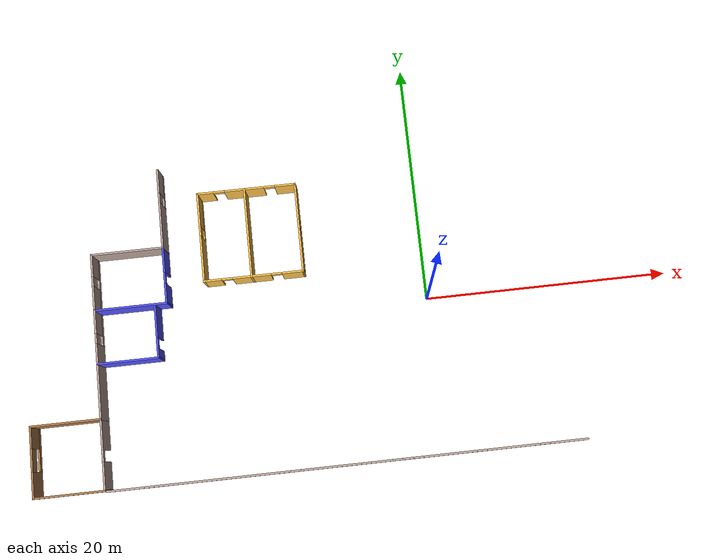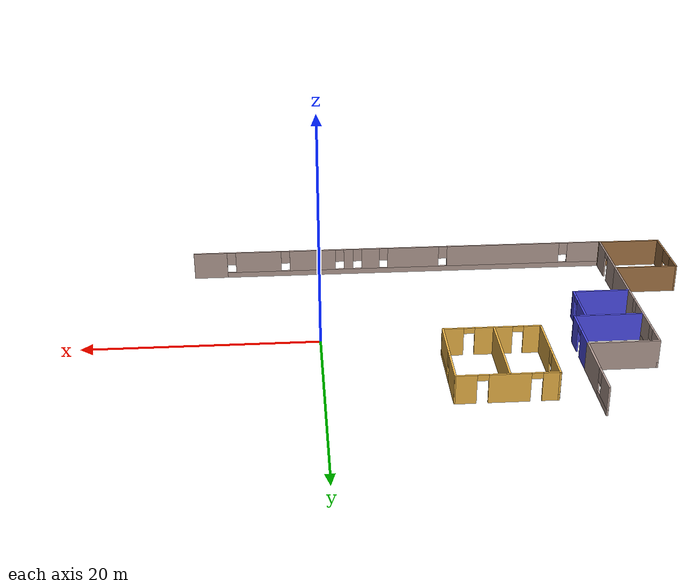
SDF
<sdf version="1.6">
 <model name="Building">
  <pose>-10.6691 -0.029366 0 0 -0 0</pose>
  <link name="Wall_161">
   <pose>2.8856 -12.8282 0 0 -0 3.14159</pose>
   <visual name="Wall_161_Visual_0">
    <pose>-17.595 0 1.25 0 -0 0</pose>
    <geometry><box><size>3.06004 0.15 2.5</size></box></geometry>
    <material>
     <script><uri>file://media/materials/scripts/gazebo.material</uri><name>Gazebo/Grey</name></script>
     <ambient>0.760784 0.662745 0.627451 1</ambient>
    </material>
    <meta><layer>0</layer></meta>
   </visual>
   <collision name="Wall_161_Collision_0">
    <geometry><box><size>3.06004 0.15 2.5</size></box></geometry>
    <pose>-17.595 0 1.25 0 -0 0</pose>
   </collision>
   <visual name="Wall_161_Visual_1">
    <pose>1.53002 0 0.25 0 -0 0</pose>
    <geometry><box><size>35.19 0.15 0.5</size></box></geometry>
    <material>
     <script><uri>file://media/materials/scripts/gazebo.material</uri><name>Gazebo/Grey</name></script>
     <ambient>0.760784 0.662745 0.627451 1</ambient>
    </material>
    <meta><layer>0</layer></meta>
   </visual>
   <collision name="Wall_161_Collision_1">
    <geometry><box><size>35.19 0.15 0.5</size></box></geometry>
    <pose>1.53002 0 0.25 0 -0 0</pose>
   </collision>
   <visual name="Wall_161_Visual_2">
    <pose>-13.1526 0 1.5 0 -0 0</pose>
    <geometry><box><size>4.22475 0.15 2</size></box></geometry>
    <material>
     <script><uri>file://media/materials/scripts/gazebo.material</uri><name>Gazebo/Grey</name></script>
     <ambient>0.760784 0.662745 0.627451 1</ambient>
    </material>
    <meta><layer>0</layer></meta>
   </visual>
   <collision name="Wall_161_Collision_2">
    <geometry><box><size>4.22475 0.15 2</size></box></geometry>
    <pose>-13.1526 0 1.5 0 -0 0</pose>
   </collision>
   <visual name="Wall_161_Visual_3">
    <pose>-8.105 0 1.5 0 -0 0</pose>
    <geometry><box><size>4.27041 0.15 2</size></box></geometry>
    <material>
     <script><uri>file://media/materials/scripts/gazebo.material</uri><name>Gazebo/Grey</name></script>
     <ambient>0.760784 0.662745 0.627451 1</ambient>
    </material>
    <meta><layer>0</layer></meta>
   </visual>
   <collision name="Wall_161_Collision_3">
    <geometry><box><size>4.27041 0.15 2</size></box></geometry>
    <pose>-8.105 0 1.5 0 -0 0</pose>
   </collision>
   <visual name="Wall_161_Visual_4">
    <pose>-4.73361 0 1.5 0 -0 0</pose>
    <geometry><box><size>0.872362 0.15 2</size></box></geometry>
    <material>
     <script><uri>file://media/materials/scripts/gazebo.material</uri><name>Gazebo/Grey</name></script>
     <ambient>0.760784 0.662745 0.627451 1</ambient>
    </material>
    <meta><layer>0</layer></meta>
   </visual>
   <collision name="Wall_161_Collision_4">
    <geometry><box><size>0.872362 0.15 2</size></box></geometry>
    <pose>-4.73361 0 1.5 0 -0 0</pose>
   </collision>
   <visual name="Wall_161_Visual_5">
    <pose>-2.66754 0 1.5 0 -0 0</pose>
    <geometry><box><size>1.65978 0.15 2</size></box></geometry>
    <material>
     <script><uri>file://media/materials/scripts/gazebo.material</uri><name>Gazebo/Grey</name></script>
     <ambient>0.760784 0.662745 0.627451 1</ambient>
    </material>
    <meta><layer>0</layer></meta>
   </visual>
   <collision name="Wall_161_Collision_5">
    <geometry><box><size>1.65978 0.15 2</size></box></geometry>
    <pose>-2.66754 0 1.5 0 -0 0</pose>
   </collision>
   <visual name="Wall_161_Visual_6">
    <pose>1.37416 0 1.5 0 -0 0</pose>
    <geometry><box><size>4.82362 0.15 2</size></box></geometry>
    <material>
     <script><uri>file://media/materials/scripts/gazebo.material</uri><name>Gazebo/Grey</name></script>
     <ambient>0.760784 0.662745 0.627451 1</ambient>
    </material>
    <meta><layer>0</layer></meta>
   </visual>
   <collision name="Wall_161_Collision_6">
    <geometry><box><size>4.82362 0.15 2</size></box></geometry>
    <pose>1.37416 0 1.5 0 -0 0</pose>
   </collision>
   <visual name="Wall_161_Visual_7">
    <pose>9.94407 0 1.5 0 -0 0</pose>
    <geometry><box><size>10.7162 0.15 2</size></box></geometry>
    <material>
     <script><uri>file://media/materials/scripts/gazebo.material</uri><name>Gazebo/Grey</name></script>
     <ambient>0.760784 0.662745 0.627451 1</ambient>
    </material>
    <meta><layer>0</layer></meta>
   </visual>
   <collision name="Wall_161_Collision_7">
    <geometry><box><size>10.7162 0.15 2</size></box></geometry>
    <pose>9.94407 0 1.5 0 -0 0</pose>
   </collision>
   <visual name="Wall_161_Visual_8">
    <pose>17.6136 0 1.5 0 -0 0</pose>
    <geometry><box><size>3.02283 0.15 2</size></box></geometry>
    <material>
     <script><uri>file://media/materials/scripts/gazebo.material</uri><name>Gazebo/Grey</name></script>
     <ambient>0.760784 0.662745 0.627451 1</ambient>
    </material>
    <meta><layer>0</layer></meta>
   </visual>
   <collision name="Wall_161_Collision_8">
    <geometry><box><size>3.02283 0.15 2</size></box></geometry>
    <pose>17.6136 0 1.5 0 -0 0</pose>
   </collision>
   <visual name="Wall_161_Visual_9">
    <pose>-15.665 0 1.9 0 -0 0</pose>
    <geometry><box><size>0.8 0.15 1.2</size></box></geometry>
    <material>
     <script><uri>file://media/materials/scripts/gazebo.material</uri><name>Gazebo/Grey</name></script>
     <ambient>0.760784 0.662745 0.627451 1</ambient>
    </material>
    <meta><layer>0</layer></meta>
   </visual>
   <collision name="Wall_161_Collision_9">
    <geometry><box><size>0.8 0.15 1.2</size></box></geometry>
    <pose>-15.665 0 1.9 0 -0 0</pose>
   </collision>
   <visual name="Wall_161_Visual_10">
    <pose>-10.6402 0 1.9 0 -0 0</pose>
    <geometry><box><size>0.8 0.15 1.2</size></box></geometry>
    <material>
     <script><uri>file://media/materials/scripts/gazebo.material</uri><name>Gazebo/Grey</name></script>
     <ambient>0.760784 0.662745 0.627451 1</ambient>
    </material>
    <meta><layer>0</layer></meta>
   </visual>
   <collision name="Wall_161_Collision_10">
    <geometry><box><size>0.8 0.15 1.2</size></box></geometry>
    <pose>-10.6402 0 1.9 0 -0 0</pose>
   </collision>
   <visual name="Wall_161_Visual_11">
    <pose>-5.56979 0 1.9 0 -0 0</pose>
    <geometry><box><size>0.8 0.15 1.2</size></box></geometry>
    <material>
     <script><uri>file://media/materials/scripts/gazebo.material</uri><name>Gazebo/Grey</name></script>
     <ambient>0.760784 0.662745 0.627451 1</ambient>
    </material>
    <meta><layer>0</layer></meta>
   </visual>
   <collision name="Wall_161_Collision_11">
    <geometry><box><size>0.8 0.15 1.2</size></box></geometry>
    <pose>-5.56979 0 1.9 0 -0 0</pose>
   </collision>
   <visual name="Wall_161_Visual_12">
    <pose>-3.89743 0 1.9 0 -0 0</pose>
    <geometry><box><size>0.8 0.15 1.2</size></box></geometry>
    <material>
     <script><uri>file://media/materials/scripts/gazebo.material</uri><name>Gazebo/Grey</name></script>
     <ambient>0.760784 0.662745 0.627451 1</ambient>
    </material>
    <meta><layer>0</layer></meta>
   </visual>
   <collision name="Wall_161_Collision_12">
    <geometry><box><size>0.8 0.15 1.2</size></box></geometry>
    <pose>-3.89743 0 1.9 0 -0 0</pose>
   </collision>
   <visual name="Wall_161_Visual_13">
    <pose>-1.43765 0 1.9 0 -0 0</pose>
    <geometry><box><size>0.8 0.15 1.2</size></box></geometry>
    <material>
     <script><uri>file://media/materials/scripts/gazebo.material</uri><name>Gazebo/Grey</name></script>
     <ambient>0.760784 0.662745 0.627451 1</ambient>
    </material>
    <meta><layer>0</layer></meta>
   </visual>
   <collision name="Wall_161_Collision_13">
    <geometry><box><size>0.8 0.15 1.2</size></box></geometry>
    <pose>-1.43765 0 1.9 0 -0 0</pose>
   </collision>
   <visual name="Wall_161_Visual_14">
    <pose>4.18597 0 1.9 0 -0 0</pose>
    <geometry><box><size>0.8 0.15 1.2</size></box></geometry>
    <material>
     <script><uri>file://media/materials/scripts/gazebo.material</uri><name>Gazebo/Grey</name></script>
     <ambient>0.760784 0.662745 0.627451 1</ambient>
    </material>
    <meta><layer>0</layer></meta>
   </visual>
   <collision name="Wall_161_Collision_14">
    <geometry><box><size>0.8 0.15 1.2</size></box></geometry>
    <pose>4.18597 0 1.9 0 -0 0</pose>
   </collision>
   <visual name="Wall_161_Visual_15">
    <pose>15.7022 0 1.9 0 -0 0</pose>
    <geometry><box><size>0.8 0.15 1.2</size></box></geometry>
    <material>
     <script><uri>file://media/materials/scripts/gazebo.material</uri><name>Gazebo/Grey</name></script>
     <ambient>0.760784 0.662745 0.627451 1</ambient>
    </material>
    <meta><layer>0</layer></meta>
   </visual>
   <collision name="Wall_161_Collision_15">
    <geometry><box><size>0.8 0.15 1.2</size></box></geometry>
    <pose>15.7022 0 1.9 0 -0 0</pose>
   </collision>
  </link>
  <link name="Wall_163">
   <collision name="Wall_163_Collision">
    <geometry><box><size>5.75 0.15 2.5</size></box></geometry>
    <pose>0 0 1.25 0 -0 0</pose>
   </collision>
   <visual name="Wall_163_Visual">
    <pose>0 0 1.25 0 -0 0</pose>
    <geometry><box><size>5.75 0.15 2.5</size></box></geometry>
    <material>
     <script><uri>file://media/materials/scripts/gazebo.material</uri><name>Gazebo/Wood</name></script>
     <ambient>0.760784 0.662745 0.627451 1</ambient>
    </material>
    <meta><layer>0</layer></meta>
   </visual>
   <pose>-19.1357 -7.15926 0 0 -0 0</pose>
  </link>
  <link name="Wall_164">
   <pose>-16.3357 -0.484261 0 0 -0 1.5708</pose>
   <visual name="Wall_164_Visual_0">
    <pose>-3.67658 0 1.25 0 -0 0</pose>
    <geometry><box><size>6.14683 0.15 2.5</size></box></geometry>
    <material>
     <script><uri>file://media/materials/scripts/gazebo.material</uri><name>Gazebo/Grey</name></script>
     <ambient>0.760784 0.662745 0.627451 1</ambient>
    </material>
    <meta><layer>0</layer></meta>
   </visual>
   <collision name="Wall_164_Collision_0">
    <geometry><box><size>6.14683 0.15 2.5</size></box></geometry>
    <pose>-3.67658 0 1.25 0 -0 0</pose>
   </collision>
   <visual name="Wall_164_Visual_1">
    <pose>3.07342 0 0.25 0 -0 0</pose>
    <geometry><box><size>7.35317 0.15 0.5</size></box></geometry>
    <material>
     <script><uri>file://media/materials/scripts/gazebo.material</uri><name>Gazebo/Grey</name></script>
     <ambient>0.760784 0.662745 0.627451 1</ambient>
    </material>
    <meta><layer>0</layer></meta>
   </visual>
   <collision name="Wall_164_Collision_1">
    <geometry><box><size>7.35317 0.15 0.5</size></box></geometry>
    <pose>3.07342 0 0.25 0 -0 0</pose>
   </collision>
   <visual name="Wall_164_Visual_2">
    <pose>2.14621 0 1.5 0 -0 0</pose>
    <geometry><box><size>3.89875 0.15 2</size></box></geometry>
    <material>
     <script><uri>file://media/materials/scripts/gazebo.material</uri><name>Gazebo/Grey</name></script>
     <ambient>0.760784 0.662745 0.627451 1</ambient>
    </material>
    <meta><layer>0</layer></meta>
   </visual>
   <collision name="Wall_164_Collision_2">
    <geometry><box><size>3.89875 0.15 2</size></box></geometry>
    <pose>2.14621 0 1.5 0 -0 0</pose>
   </collision>
   <visual name="Wall_164_Visual_3">
    <pose>5.82279 0 1.5 0 -0 0</pose>
    <geometry><box><size>1.85441 0.15 2</size></box></geometry>
    <material>
     <script><uri>file://media/materials/scripts/gazebo.material</uri><name>Gazebo/Grey</name></script>
     <ambient>0.760784 0.662745 0.627451 1</ambient>
    </material>
    <meta><layer>0</layer></meta>
   </visual>
   <collision name="Wall_164_Collision_3">
    <geometry><box><size>1.85441 0.15 2</size></box></geometry>
    <pose>5.82279 0 1.5 0 -0 0</pose>
   </collision>
   <visual name="Wall_164_Visual_4">
    <pose>-0.203166 0 1.9 0 -0 0</pose>
    <geometry><box><size>0.8 0.15 1.2</size></box></geometry>
    <material>
     <script><uri>file://media/materials/scripts/gazebo.material</uri><name>Gazebo/Grey</name></script>
     <ambient>0.760784 0.662745 0.627451 1</ambient>
    </material>
    <meta><layer>0</layer></meta>
   </visual>
   <collision name="Wall_164_Collision_4">
    <geometry><box><size>0.8 0.15 1.2</size></box></geometry>
    <pose>-0.203166 0 1.9 0 -0 0</pose>
   </collision>
   <visual name="Wall_164_Visual_5">
    <pose>4.49559 0 1.9 0 -0 0</pose>
    <geometry><box><size>0.8 0.15 1.2</size></box></geometry>
    <material>
     <script><uri>file://media/materials/scripts/gazebo.material</uri><name>Gazebo/Grey</name></script>
     <ambient>0.760784 0.662745 0.627451 1</ambient>
    </material>
    <meta><layer>0</layer></meta>
   </visual>
   <collision name="Wall_164_Collision_5">
    <geometry><box><size>0.8 0.15 1.2</size></box></geometry>
    <pose>4.49559 0 1.9 0 -0 0</pose>
   </collision>
  </link>
  <link name="Wall_165">
   <collision name="Wall_165_Collision">
    <geometry><box><size>6 0.15 2.5</size></box></geometry>
    <pose>0 0 1.25 0 -0 0</pose>
   </collision>
   <visual name="Wall_165_Visual">
    <pose>0 0 1.25 0 -0 0</pose>
    <geometry><box><size>6 0.15 2.5</size></box></geometry>
    <material>
     <script><uri>file://media/materials/scripts/gazebo.material</uri><name>Gazebo/Grey</name></script>
     <ambient>0.760784 0.662745 0.627451 1</ambient>
    </material>
    <meta><layer>0</layer></meta>
   </visual>
   <pose>-13.4107 6.19074 0 0 -0 0</pose>
  </link>
  <link name="Wall_166">
   <pose>-10.4857 9.49074 0 0 -0 1.5708</pose>
   <visual name="Wall_166_Visual_0">
    <pose>-1.42072 0 1.25 0 -0 0</pose>
    <geometry><box><size>3.90856 0.15 2.5</size></box></geometry>
    <material>
     <script><uri>file://media/materials/scripts/gazebo.material</uri><name>Gazebo/Grey</name></script>
     <ambient>0.760784 0.662745 0.627451 1</ambient>
    </material>
    <meta><layer>0</layer></meta>
   </visual>
   <collision name="Wall_166_Collision_0">
    <geometry><box><size>3.90856 0.15 2.5</size></box></geometry>
    <pose>-1.42072 0 1.25 0 -0 0</pose>
   </collision>
   <visual name="Wall_166_Visual_1">
    <pose>1.95428 0 0.25 0 -0 0</pose>
    <geometry><box><size>2.84144 0.15 0.5</size></box></geometry>
    <material>
     <script><uri>file://media/materials/scripts/gazebo.material</uri><name>Gazebo/Grey</name></script>
     <ambient>0.760784 0.662745 0.627451 1</ambient>
    </material>
    <meta><layer>0</layer></meta>
   </visual>
   <collision name="Wall_166_Collision_1">
    <geometry><box><size>2.84144 0.15 0.5</size></box></geometry>
    <pose>1.95428 0 0.25 0 -0 0</pose>
   </collision>
   <visual name="Wall_166_Visual_2">
    <pose>2.35428 0 1.5 0 -0 0</pose>
    <geometry><box><size>2.04144 0.15 2</size></box></geometry>
    <material>
     <script><uri>file://media/materials/scripts/gazebo.material</uri><name>Gazebo/Grey</name></script>
     <ambient>0.760784 0.662745 0.627451 1</ambient>
    </material>
    <meta><layer>0</layer></meta>
   </visual>
   <collision name="Wall_166_Collision_2">
    <geometry><box><size>2.04144 0.15 2</size></box></geometry>
    <pose>2.35428 0 1.5 0 -0 0</pose>
   </collision>
   <visual name="Wall_166_Visual_3">
    <pose>0.933557 0 1.9 0 -0 0</pose>
    <geometry><box><size>0.8 0.15 1.2</size></box></geometry>
    <material>
     <script><uri>file://media/materials/scripts/gazebo.material</uri><name>Gazebo/Grey</name></script>
     <ambient>0.760784 0.662745 0.627451 1</ambient>
    </material>
    <meta><layer>0</layer></meta>
   </visual>
   <collision name="Wall_166_Collision_3">
    <geometry><box><size>0.8 0.15 1.2</size></box></geometry>
    <pose>0.933557 0 1.9 0 -0 0</pose>
   </collision>
  </link>
  <link name="Wall_189">
   <pose>-16.3357 -9.95926 0 0 0 -1.5708</pose>
   <visual name="Wall_189_Visual_0">
    <pose>-1.62092 0 1.25 0 -0 0</pose>
    <geometry><box><size>2.50815 0.15 2.5</size></box></geometry>
    <material>
     <script><uri>file://media/materials/scripts/gazebo.material</uri><name>Gazebo/Grey</name></script>
     <ambient>0.760784 0.662745 0.627451 1</ambient>
    </material>
    <meta><layer>0</layer></meta>
   </visual>
   <collision name="Wall_189_Collision_0">
    <geometry><box><size>2.50815 0.15 2.5</size></box></geometry>
    <pose>-1.62092 0 1.25 0 -0 0</pose>
   </collision>
   <visual name="Wall_189_Visual_1">
    <pose>1.70408 0 1.25 0 -0 0</pose>
    <geometry><box><size>2.34185 0.15 2.5</size></box></geometry>
    <material>
     <script><uri>file://media/materials/scripts/gazebo.material</uri><name>Gazebo/Grey</name></script>
     <ambient>0.760784 0.662745 0.627451 1</ambient>
    </material>
    <meta><layer>0</layer></meta>
   </visual>
   <collision name="Wall_189_Collision_1">
    <geometry><box><size>2.34185 0.15 2.5</size></box></geometry>
    <pose>1.70408 0 1.25 0 -0 0</pose>
   </collision>
   <visual name="Wall_189_Visual_2">
    <pose>0.083151 0 2.25 0 -0 0</pose>
    <geometry><box><size>0.9 0.15 0.5</size></box></geometry>
    <material>
     <script><uri>file://media/materials/scripts/gazebo.material</uri><name>Gazebo/Grey</name></script>
     <ambient>0.760784 0.662745 0.627451 1</ambient>
    </material>
    <meta><layer>0</layer></meta>
   </visual>
   <collision name="Wall_189_Collision_2">
    <geometry><box><size>0.9 0.15 0.5</size></box></geometry>
    <pose>0.083151 0 2.25 0 -0 0</pose>
   </collision>
  </link>
  <link name="Wall_191">
   <pose>-10.4857 3.89074 0 0 0 -1.5708</pose>
   <visual name="Wall_191_Visual_0">
    <pose>-1.3027 0 1.25 0 -0 0</pose>
    <geometry><box><size>2.14459 0.15 2.5</size></box></geometry>
    <material>
     <script><uri>file://media/materials/scripts/gazebo.material</uri><name>Gazebo/Grey</name></script>
     <ambient>0.333333 0.333333 1 1</ambient>
    </material>
    <meta><layer>0</layer></meta>
   </visual>
   <collision name="Wall_191_Collision_0">
    <geometry><box><size>2.14459 0.15 2.5</size></box></geometry>
    <pose>-1.3027 0 1.25 0 -0 0</pose>
   </collision>
   <visual name="Wall_191_Visual_1">
    <pose>1.5223 0 1.25 0 -0 0</pose>
    <geometry><box><size>1.70541 0.15 2.5</size></box></geometry>
    <material>
     <script><uri>file://media/materials/scripts/gazebo.material</uri><name>Gazebo/Grey</name></script>
     <ambient>0.333333 0.333333 1 1</ambient>
    </material>
    <meta><layer>0</layer></meta>
   </visual>
   <collision name="Wall_191_Collision_1">
    <geometry><box><size>1.70541 0.15 2.5</size></box></geometry>
    <pose>1.5223 0 1.25 0 -0 0</pose>
   </collision>
   <visual name="Wall_191_Visual_2">
    <pose>0.219593 0 2.25 0 -0 0</pose>
    <geometry><box><size>0.9 0.15 0.5</size></box></geometry>
    <material>
     <script><uri>file://media/materials/scripts/gazebo.material</uri><name>Gazebo/Grey</name></script>
     <ambient>0.333333 0.333333 1 1</ambient>
    </material>
    <meta><layer>0</layer></meta>
   </visual>
   <collision name="Wall_191_Collision_2">
    <geometry><box><size>0.9 0.15 0.5</size></box></geometry>
    <pose>0.219593 0 2.25 0 -0 0</pose>
   </collision>
  </link>
  <link name="Wall_192">
   <collision name="Wall_192_Collision">
    <geometry><box><size>6 0.15 2.5</size></box></geometry>
    <pose>0 0 1.25 0 -0 0</pose>
   </collision>
   <visual name="Wall_192_Visual">
    <pose>0 0 1.25 0 -0 0</pose>
    <geometry><box><size>6 0.15 2.5</size></box></geometry>
    <material>
     <script><uri>file://media/materials/scripts/gazebo.material</uri><name>Gazebo/Grey</name></script>
     <ambient>0.333333 0.333333 1 1</ambient>
    </material>
    <meta><layer>0</layer></meta>
   </visual>
   <pose>-13.4107 1.59074 0 0 -0 3.14159</pose>
  </link>
  <link name="Wall_195">
   <pose>-11.4405 -0.589546 0 0 0 -1.5708</pose>
   <visual name="Wall_195_Visual_0">
    <pose>-0.865202 0 1.25 0 -0 0</pose>
    <geometry><box><size>2.76959 0.15 2.5</size></box></geometry>
    <material>
     <script><uri>file://media/materials/scripts/gazebo.material</uri><name>Gazebo/Grey</name></script>
     <ambient>0.333333 0.333333 1 1</ambient>
    </material>
    <meta><layer>0</layer></meta>
   </visual>
   <collision name="Wall_195_Collision_0">
    <geometry><box><size>2.76959 0.15 2.5</size></box></geometry>
    <pose>-0.865202 0 1.25 0 -0 0</pose>
   </collision>
   <visual name="Wall_195_Visual_1">
    <pose>1.8348 0 1.25 0 -0 0</pose>
    <geometry><box><size>0.830405 0.15 2.5</size></box></geometry>
    <material>
     <script><uri>file://media/materials/scripts/gazebo.material</uri><name>Gazebo/Grey</name></script>
     <ambient>0.333333 0.333333 1 1</ambient>
    </material>
    <meta><layer>0</layer></meta>
   </visual>
   <collision name="Wall_195_Collision_1">
    <geometry><box><size>0.830405 0.15 2.5</size></box></geometry>
    <pose>1.8348 0 1.25 0 -0 0</pose>
   </collision>
   <visual name="Wall_195_Visual_2">
    <pose>0.969595 0 2.25 0 -0 0</pose>
    <geometry><box><size>0.9 0.15 0.5</size></box></geometry>
    <material>
     <script><uri>file://media/materials/scripts/gazebo.material</uri><name>Gazebo/Grey</name></script>
     <ambient>0.333333 0.333333 1 1</ambient>
    </material>
    <meta><layer>0</layer></meta>
   </visual>
   <collision name="Wall_195_Collision_2">
    <geometry><box><size>0.9 0.15 0.5</size></box></geometry>
    <pose>0.969595 0 2.25 0 -0 0</pose>
   </collision>
  </link>
  <link name="Wall_196">
   <collision name="Wall_196_Collision">
    <geometry><box><size>5 0.15 2.5</size></box></geometry>
    <pose>0 0 1.25 0 -0 0</pose>
   </collision>
   <visual name="Wall_196_Visual">
    <pose>0 0 1.25 0 -0 0</pose>
    <geometry><box><size>5 0.15 2.5</size></box></geometry>
    <material>
     <script><uri>file://media/materials/scripts/gazebo.material</uri><name>Gazebo/Grey</name></script>
     <ambient>0.333333 0.333333 1 1</ambient>
    </material>
    <meta><layer>0</layer></meta>
   </visual>
   <pose>-13.8655 -2.76455 0 0 -0 3.14159</pose>
  </link>
  <link name="Wall_198">
   <pose>-3.28091 10.3897 0 0 -0 0</pose>
   <visual name="Wall_198_Visual_0">
    <pose>-3.41952 0 1.25 0 -0 0</pose>
    <geometry><box><size>1.41095 0.15 2.5</size></box></geometry>
    <material>
     <script><uri>file://media/materials/scripts/gazebo.material</uri><name>Gazebo/Grey</name></script>
     <ambient>1 0.764706 0.305882 1</ambient>
    </material>
    <meta><layer>0</layer></meta>
   </visual>
   <collision name="Wall_198_Collision_0">
    <geometry><box><size>1.41095 0.15 2.5</size></box></geometry>
    <pose>-3.41952 0 1.25 0 -0 0</pose>
   </collision>
   <visual name="Wall_198_Visual_1">
    <pose>-0.169807 0 1.25 0 -0 0</pose>
    <geometry><box><size>3.28848 0.15 2.5</size></box></geometry>
    <material>
     <script><uri>file://media/materials/scripts/gazebo.material</uri><name>Gazebo/Grey</name></script>
     <ambient>1 0.764706 0.305882 1</ambient>
    </material>
    <meta><layer>0</layer></meta>
   </visual>
   <collision name="Wall_198_Collision_1">
    <geometry><box><size>3.28848 0.15 2.5</size></box></geometry>
    <pose>-0.169807 0 1.25 0 -0 0</pose>
   </collision>
   <visual name="Wall_198_Visual_2">
    <pose>3.24972 0 1.25 0 -0 0</pose>
    <geometry><box><size>1.75057 0.15 2.5</size></box></geometry>
    <material>
     <script><uri>file://media/materials/scripts/gazebo.material</uri><name>Gazebo/Grey</name></script>
     <ambient>1 0.764706 0.305882 1</ambient>
    </material>
    <meta><layer>0</layer></meta>
   </visual>
   <collision name="Wall_198_Collision_2">
    <geometry><box><size>1.75057 0.15 2.5</size></box></geometry>
    <pose>3.24972 0 1.25 0 -0 0</pose>
   </collision>
   <visual name="Wall_198_Visual_3">
    <pose>-2.26405 0 2.25 0 -0 0</pose>
    <geometry><box><size>0.9 0.15 0.5</size></box></geometry>
    <material>
     <script><uri>file://media/materials/scripts/gazebo.material</uri><name>Gazebo/Grey</name></script>
     <ambient>1 0.764706 0.305882 1</ambient>
    </material>
    <meta><layer>0</layer></meta>
   </visual>
   <collision name="Wall_198_Collision_3">
    <geometry><box><size>0.9 0.15 0.5</size></box></geometry>
    <pose>-2.26405 0 2.25 0 -0 0</pose>
   </collision>
   <visual name="Wall_198_Visual_4">
    <pose>1.92443 0 2.25 0 -0 0</pose>
    <geometry><box><size>0.9 0.15 0.5</size></box></geometry>
    <material>
     <script><uri>file://media/materials/scripts/gazebo.material</uri><name>Gazebo/Grey</name></script>
     <ambient>1 0.764706 0.305882 1</ambient>
    </material>
    <meta><layer>0</layer></meta>
   </visual>
   <collision name="Wall_198_Collision_4">
    <geometry><box><size>0.9 0.15 0.5</size></box></geometry>
    <pose>1.92443 0 2.25 0 -0 0</pose>
   </collision>
  </link>
  <link name="Wall_199">
   <pose>0.774228 6.71473 0 0 0 -1.5694</pose>
   <visual name="Wall_199_Visual_0">
    <pose>-2.20052 0 1.25 0 -0 0</pose>
    <geometry><box><size>3.09897 0.15 2.5</size></box></geometry>
    <material>
     <script><uri>file://media/materials/scripts/gazebo.material</uri><name>Gazebo/Grey</name></script>
     <ambient>1 0.764706 0.305882 1</ambient>
    </material>
    <meta><layer>0</layer></meta>
   </visual>
   <collision name="Wall_199_Collision_0">
    <geometry><box><size>3.09897 0.15 2.5</size></box></geometry>
    <pose>-2.20052 0 1.25 0 -0 0</pose>
   </collision>
   <visual name="Wall_199_Visual_1">
    <pose>1.54948 0 0.25 0 -0 0</pose>
    <geometry><box><size>4.40104 0.15 0.5</size></box></geometry>
    <material>
     <script><uri>file://media/materials/scripts/gazebo.material</uri><name>Gazebo/Grey</name></script>
     <ambient>1 0.764706 0.305882 1</ambient>
    </material>
    <meta><layer>0</layer></meta>
   </visual>
   <collision name="Wall_199_Collision_1">
    <geometry><box><size>4.40104 0.15 0.5</size></box></geometry>
    <pose>1.54948 0 0.25 0 -0 0</pose>
   </collision>
   <visual name="Wall_199_Visual_2">
    <pose>1.94948 0 1.5 0 -0 0</pose>
    <geometry><box><size>3.60104 0.15 2</size></box></geometry>
    <material>
     <script><uri>file://media/materials/scripts/gazebo.material</uri><name>Gazebo/Grey</name></script>
     <ambient>1 0.764706 0.305882 1</ambient>
    </material>
    <meta><layer>0</layer></meta>
   </visual>
   <collision name="Wall_199_Collision_2">
    <geometry><box><size>3.60104 0.15 2</size></box></geometry>
    <pose>1.94948 0 1.5 0 -0 0</pose>
   </collision>
   <visual name="Wall_199_Visual_3">
    <pose>-0.251037 0 1.9 0 -0 0</pose>
    <geometry><box><size>0.8 0.15 1.2</size></box></geometry>
    <material>
     <script><uri>file://media/materials/scripts/gazebo.material</uri><name>Gazebo/Grey</name></script>
     <ambient>1 0.764706 0.305882 1</ambient>
    </material>
    <meta><layer>0</layer></meta>
   </visual>
   <collision name="Wall_199_Collision_3">
    <geometry><box><size>0.8 0.15 1.2</size></box></geometry>
    <pose>-0.251037 0 1.9 0 -0 0</pose>
   </collision>
  </link>
  <link name="Wall_200">
   <pose>-3.27064 3.03973 0 0 -0 3.14159</pose>
   <visual name="Wall_200_Visual_0">
    <pose>-3.22332 0 1.25 0 -0 0</pose>
    <geometry><box><size>1.80336 0.15 2.5</size></box></geometry>
    <material>
     <script><uri>file://media/materials/scripts/gazebo.material</uri><name>Gazebo/Grey</name></script>
     <ambient>1 0.764706 0.305882 1</ambient>
    </material>
    <meta><layer>0</layer></meta>
   </visual>
   <collision name="Wall_200_Collision_0">
    <geometry><box><size>1.80336 0.15 2.5</size></box></geometry>
    <pose>-3.22332 0 1.25 0 -0 0</pose>
   </collision>
   <visual name="Wall_200_Visual_1">
    <pose>0.148188 0 1.25 0 -0 0</pose>
    <geometry><box><size>3.13965 0.15 2.5</size></box></geometry>
    <material>
     <script><uri>file://media/materials/scripts/gazebo.material</uri><name>Gazebo/Grey</name></script>
     <ambient>1 0.764706 0.305882 1</ambient>
    </material>
    <meta><layer>0</layer></meta>
   </visual>
   <collision name="Wall_200_Collision_1">
    <geometry><box><size>3.13965 0.15 2.5</size></box></geometry>
    <pose>0.148188 0 1.25 0 -0 0</pose>
   </collision>
   <visual name="Wall_200_Visual_2">
    <pose>3.37151 0 1.25 0 -0 0</pose>
    <geometry><box><size>1.50699 0.15 2.5</size></box></geometry>
    <material>
     <script><uri>file://media/materials/scripts/gazebo.material</uri><name>Gazebo/Grey</name></script>
     <ambient>1 0.764706 0.305882 1</ambient>
    </material>
    <meta><layer>0</layer></meta>
   </visual>
   <collision name="Wall_200_Collision_2">
    <geometry><box><size>1.50699 0.15 2.5</size></box></geometry>
    <pose>3.37151 0 1.25 0 -0 0</pose>
   </collision>
   <visual name="Wall_200_Visual_3">
    <pose>-1.87164 0 2.25 0 -0 0</pose>
    <geometry><box><size>0.9 0.15 0.5</size></box></geometry>
    <material>
     <script><uri>file://media/materials/scripts/gazebo.material</uri><name>Gazebo/Grey</name></script>
     <ambient>1 0.764706 0.305882 1</ambient>
    </material>
    <meta><layer>0</layer></meta>
   </visual>
   <collision name="Wall_200_Collision_3">
    <geometry><box><size>0.9 0.15 0.5</size></box></geometry>
    <pose>-1.87164 0 2.25 0 -0 0</pose>
   </collision>
   <visual name="Wall_200_Visual_4">
    <pose>2.16802 0 2.25 0 -0 0</pose>
    <geometry><box><size>0.9 0.15 0.5</size></box></geometry>
    <material>
     <script><uri>file://media/materials/scripts/gazebo.material</uri><name>Gazebo/Grey</name></script>
     <ambient>1 0.764706 0.305882 1</ambient>
    </material>
    <meta><layer>0</layer></meta>
   </visual>
   <collision name="Wall_200_Collision_4">
    <geometry><box><size>0.9 0.15 0.5</size></box></geometry>
    <pose>2.16802 0 2.25 0 -0 0</pose>
   </collision>
  </link>
  <link name="Wall_201">
   <pose>-7.32064 6.71473 0 0 -0 1.5708</pose>
   <visual name="Wall_201_Visual_0">
    <pose>-1.80889 0 1.25 0 -0 0</pose>
    <geometry><box><size>3.88222 0.15 2.5</size></box></geometry>
    <material>
     <script><uri>file://media/materials/scripts/gazebo.material</uri><name>Gazebo/Grey</name></script>
     <ambient>1 0.764706 0.305882 1</ambient>
    </material>
    <meta><layer>0</layer></meta>
   </visual>
   <collision name="Wall_201_Collision_0">
    <geometry><box><size>3.88222 0.15 2.5</size></box></geometry>
    <pose>-1.80889 0 1.25 0 -0 0</pose>
   </collision>
   <visual name="Wall_201_Visual_1">
    <pose>1.94111 0 0.25 0 -0 0</pose>
    <geometry><box><size>3.61778 0.15 0.5</size></box></geometry>
    <material>
     <script><uri>file://media/materials/scripts/gazebo.material</uri><name>Gazebo/Grey</name></script>
     <ambient>1 0.764706 0.305882 1</ambient>
    </material>
    <meta><layer>0</layer></meta>
   </visual>
   <collision name="Wall_201_Collision_1">
    <geometry><box><size>3.61778 0.15 0.5</size></box></geometry>
    <pose>1.94111 0 0.25 0 -0 0</pose>
   </collision>
   <visual name="Wall_201_Visual_2">
    <pose>2.34111 0 1.5 0 -0 0</pose>
    <geometry><box><size>2.81778 0.15 2</size></box></geometry>
    <material>
     <script><uri>file://media/materials/scripts/gazebo.material</uri><name>Gazebo/Grey</name></script>
     <ambient>1 0.764706 0.305882 1</ambient>
    </material>
    <meta><layer>0</layer></meta>
   </visual>
   <collision name="Wall_201_Collision_2">
    <geometry><box><size>2.81778 0.15 2</size></box></geometry>
    <pose>2.34111 0 1.5 0 -0 0</pose>
   </collision>
   <visual name="Wall_201_Visual_3">
    <pose>0.532223 0 1.9 0 -0 0</pose>
    <geometry><box><size>0.8 0.15 1.2</size></box></geometry>
    <material>
     <script><uri>file://media/materials/scripts/gazebo.material</uri><name>Gazebo/Grey</name></script>
     <ambient>1 0.764706 0.305882 1</ambient>
    </material>
    <meta><layer>0</layer></meta>
   </visual>
   <collision name="Wall_201_Collision_3">
    <geometry><box><size>0.8 0.15 1.2</size></box></geometry>
    <pose>0.532223 0 1.9 0 -0 0</pose>
   </collision>
  </link>
  <link name="Wall_204">
   <collision name="Wall_204_Collision">
    <geometry><box><size>7.5 0.15 2.5</size></box></geometry>
    <pose>0 0 1.25 0 -0 0</pose>
   </collision>
   <visual name="Wall_204_Visual">
    <pose>0 0 1.25 0 -0 0</pose>
    <geometry><box><size>7.5 0.15 2.5</size></box></geometry>
    <material>
     <script><uri>file://media/materials/scripts/gazebo.material</uri><name>Gazebo/Grey</name></script>
     <ambient>1 0.764706 0.305882 1</ambient>
    </material>
    <meta><layer>0</layer></meta>
   </visual>
   <pose>-3.44008 6.69347 0 0 0 -1.5708</pose>
  </link>
  <link name="Wall_206">
   <collision name="Wall_206_Collision">
    <geometry><box><size>5.75 0.15 2.5</size></box></geometry>
    <pose>0 0 1.25 0 -0 0</pose>
   </collision>
   <visual name="Wall_206_Visual">
    <pose>0 0 1.25 0 -0 0</pose>
    <geometry><box><size>5.75 0.15 2.5</size></box></geometry>
    <material>
     <script><uri>file://media/materials/scripts/gazebo.material</uri><name>Gazebo/Wood</name></script>
     <ambient>1 1 1 1</ambient>
    </material>
    <meta><layer>0</layer></meta>
   </visual>
   <pose>-19.1357 -12.7593 0 0 -0 3.14159</pose>
  </link>
  <link name="Wall_207">
   <pose>-21.9357 -9.95926 0 0 -0 1.5708</pose>
   <visual name="Wall_207_Visual_0">
    <pose>-1.80961 0 1.25 0 -0 0</pose>
    <geometry><box><size>2.13078 0.15 2.5</size></box></geometry>
    <material>
     <script><uri>file://media/materials/scripts/gazebo.material</uri><name>Gazebo/Wood</name></script>
     <ambient>1 1 1 1</ambient>
    </material>
    <meta><layer>0</layer></meta>
   </visual>
   <collision name="Wall_207_Collision_0">
    <geometry><box><size>2.13078 0.15 2.5</size></box></geometry>
    <pose>-1.80961 0 1.25 0 -0 0</pose>
   </collision>
   <visual name="Wall_207_Visual_1">
    <pose>1.06539 0 0.25 0 -0 0</pose>
    <geometry><box><size>3.61922 0.15 0.5</size></box></geometry>
    <material>
     <script><uri>file://media/materials/scripts/gazebo.material</uri><name>Gazebo/Wood</name></script>
     <ambient>1 1 1 1</ambient>
    </material>
    <meta><layer>0</layer></meta>
   </visual>
   <collision name="Wall_207_Collision_1">
    <geometry><box><size>3.61922 0.15 0.5</size></box></geometry>
    <pose>1.06539 0 0.25 0 -0 0</pose>
   </collision>
   <visual name="Wall_207_Visual_2">
    <pose>1.96539 0 1.5 0 -0 0</pose>
    <geometry><box><size>1.81922 0.15 2</size></box></geometry>
    <material>
     <script><uri>file://media/materials/scripts/gazebo.material</uri><name>Gazebo/Wood</name></script>
     <ambient>1 1 1 1</ambient>
    </material>
    <meta><layer>0</layer></meta>
   </visual>
   <collision name="Wall_207_Collision_2">
    <geometry><box><size>1.81922 0.15 2</size></box></geometry>
    <pose>1.96539 0 1.5 0 -0 0</pose>
   </collision>
   <visual name="Wall_207_Visual_3">
    <pose>0.155778 0 1.9 0 -0 0</pose>
    <geometry><box><size>1.8 0.15 1.2</size></box></geometry>
    <material>
     <script><uri>file://media/materials/scripts/gazebo.material</uri><name>Gazebo/Wood</name></script>
     <ambient>1 1 1 1</ambient>
    </material>
    <meta><layer>0</layer></meta>
   </visual>
   <collision name="Wall_207_Collision_3">
    <geometry><box><size>1.8 0.15 1.2</size></box></geometry>
    <pose>0.155778 0 1.9 0 -0 0</pose>
   </collision>
  </link>
  <static>1</static>
 </model>
</sdf>
